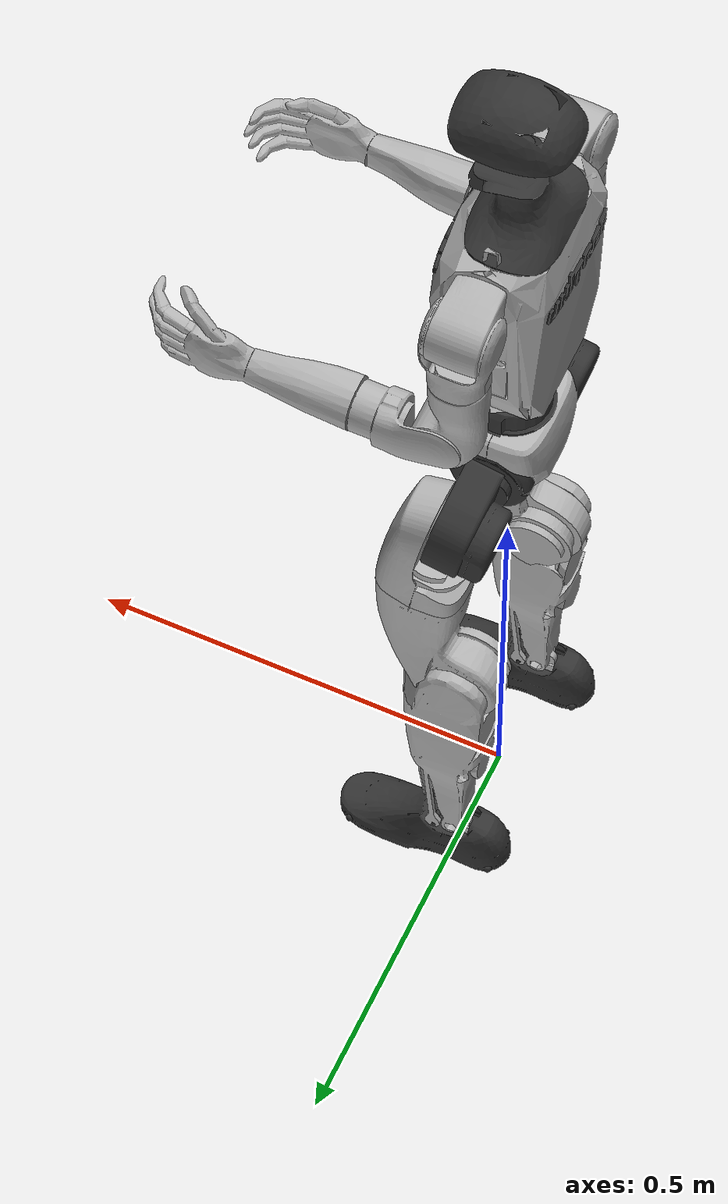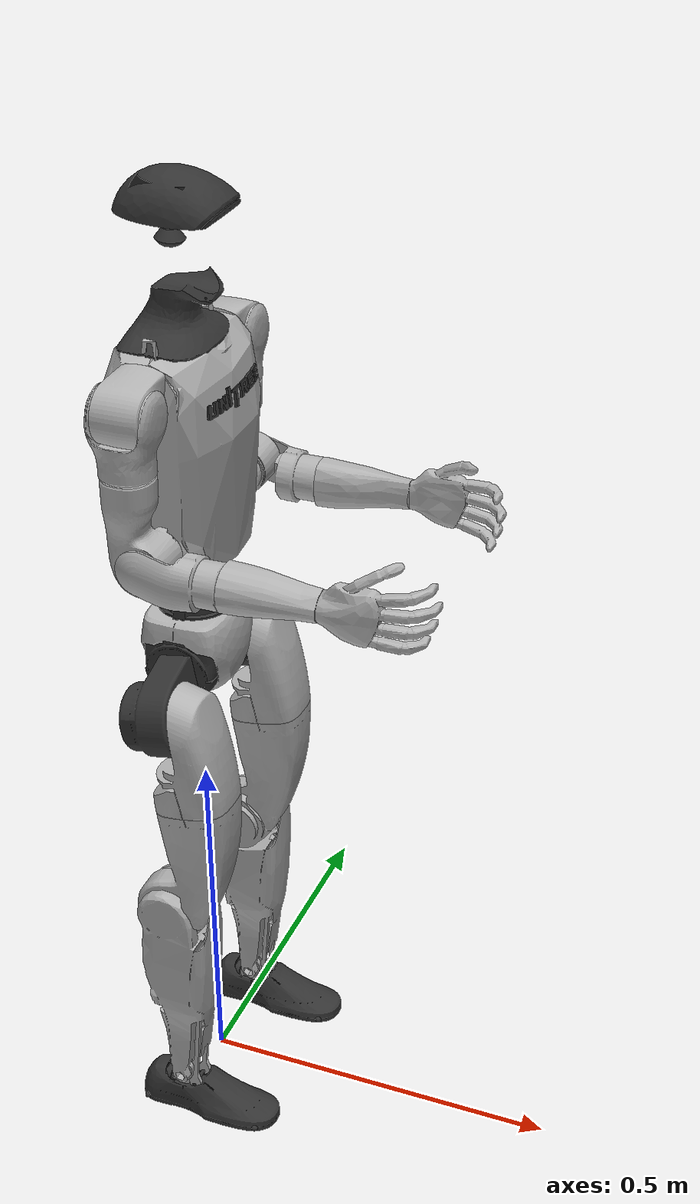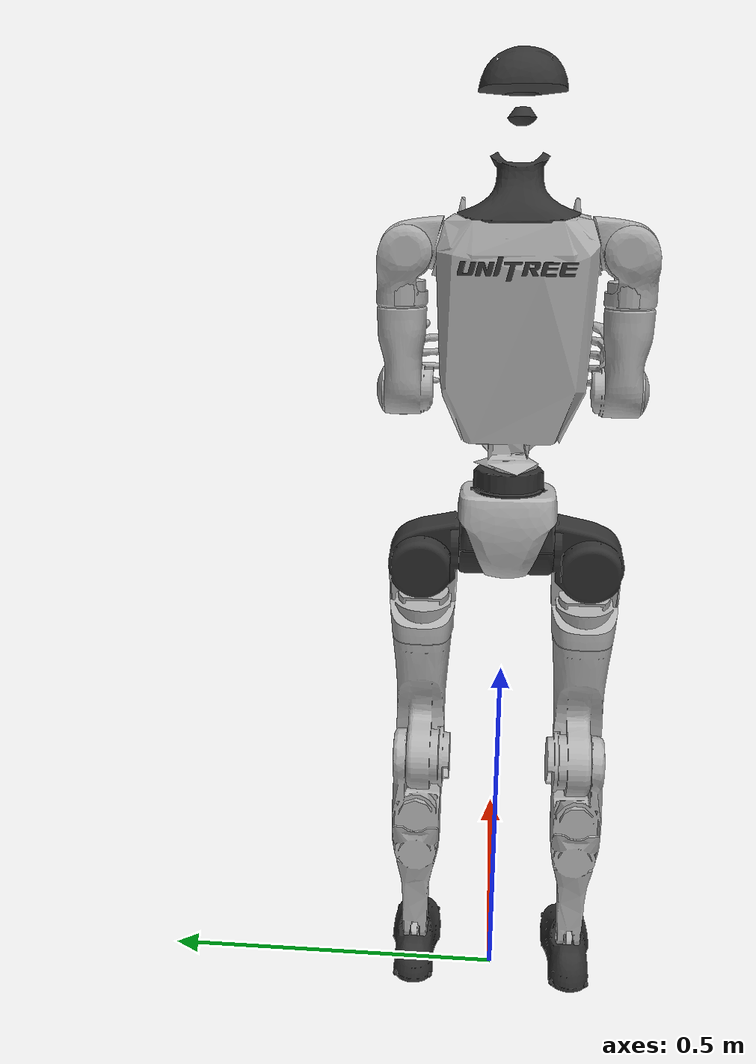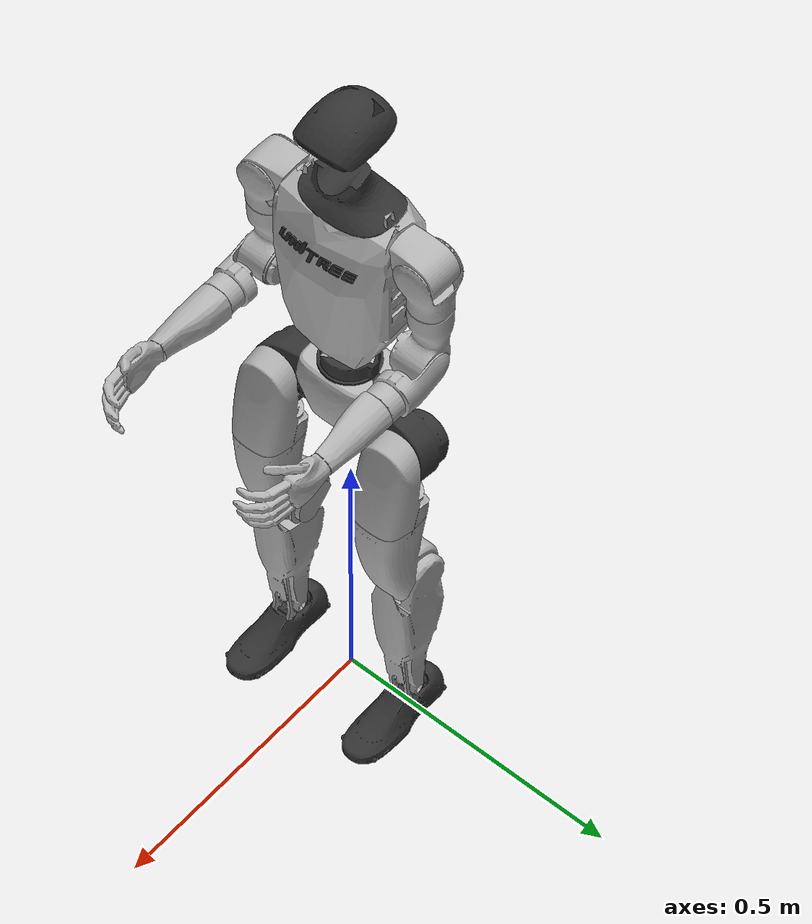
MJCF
<mujoco model="unitree_g1">
  <compiler angle="radian" meshdir="meshes/"/>

  <default>
    <joint damping="0.001" armature="0.01" frictionloss="0.1"/>
  </default>

  <asset>
    <mesh name="pelvis" file="pelvis.STL"/>
    <mesh name="pelvis_contour_link" file="pelvis_contour_link.STL"/>
    <mesh name="left_hip_pitch_link" file="left_hip_pitch_link.STL"/>
    <mesh name="left_hip_roll_link" file="left_hip_roll_link.STL"/>
    <mesh name="left_hip_yaw_link" file="left_hip_yaw_link.STL"/>
    <mesh name="left_knee_link" file="left_knee_link.STL"/>
    <mesh name="left_ankle_pitch_link" file="left_ankle_pitch_link.STL"/>
    <mesh name="left_ankle_roll_link" file="left_ankle_roll_link.STL"/>
    <mesh name="right_hip_pitch_link" file="right_hip_pitch_link.STL"/>
    <mesh name="right_hip_roll_link" file="right_hip_roll_link.STL"/>
    <mesh name="right_hip_yaw_link" file="right_hip_yaw_link.STL"/>
    <mesh name="right_knee_link" file="right_knee_link.STL"/>
    <mesh name="right_ankle_pitch_link" file="right_ankle_pitch_link.STL"/>
    <mesh name="right_ankle_roll_link" file="right_ankle_roll_link.STL"/>
    <mesh name="torso_link_23dof_rev_1_0" file="torso_link_23dof_rev_1_0.STL"/>
    <mesh name="logo_link" file="logo_link.STL"/>
    <mesh name="head_link" file="head_link_mid360_window.STL"/>
    <mesh name="left_shoulder_pitch_link" file="left_shoulder_pitch_link.STL"/>
    <mesh name="left_shoulder_roll_link" file="left_shoulder_roll_link.STL"/>
    <mesh name="left_shoulder_yaw_link" file="left_shoulder_yaw_link.STL"/>
    <mesh name="left_elbow_link" file="left_elbow_link.STL"/>
    <mesh name="left_wrist_roll_rubber_hand" file="left_wrist_roll_rubber_hand.STL"/>
    <mesh name="right_shoulder_pitch_link" file="right_shoulder_pitch_link.STL"/>
    <mesh name="right_shoulder_roll_link" file="right_shoulder_roll_link.STL"/>
    <mesh name="right_shoulder_yaw_link" file="right_shoulder_yaw_link.STL"/>
    <mesh name="right_elbow_link" file="right_elbow_link.STL"/>
    <mesh name="right_wrist_roll_rubber_hand" file="right_wrist_roll_rubber_hand.STL"/>
  </asset>

  <worldbody>
    <body name="base_link" pos="0 0 0.793">
      <inertial pos="0.0144905 0.000151462 0.144068" quat="0.999881 -0.000505543 -0.0154276 0.000328408" mass="17.7349" diaginertia="0.552723 0.454092 0.211762"/>
      <joint name="base_free" type="free" limited="false" actuatorfrclimited="false"/>
      <geom type="mesh" contype="0" conaffinity="0" group="1" density="0" rgba="0.2 0.2 0.2 1" mesh="pelvis"/>
      <geom type="mesh" contype="0" conaffinity="0" group="1" density="0" rgba="0.7 0.7 0.7 1" mesh="pelvis_contour_link"/>
      <geom type="mesh" rgba="0.7 0.7 0.7 1" mesh="pelvis_contour_link"/>
      <geom type="mesh" contype="0" conaffinity="0" group="1" density="0" rgba="0.7 0.7 0.7 1" mesh="torso_link_23dof_rev_1_0"/>
      <geom type="mesh" rgba="0.7 0.7 0.7 1" mesh="torso_link_23dof_rev_1_0"/>
      <geom type="mesh" contype="0" conaffinity="0" group="1" density="0" rgba="0.2 0.2 0.2 1" mesh="logo_link"/>
      <geom type="mesh" rgba="0.2 0.2 0.2 1" mesh="logo_link"/>
      <geom type="mesh" contype="0" conaffinity="0" group="1" density="0" rgba="0.2 0.2 0.2 1" mesh="head_link"/>
      <geom type="mesh" rgba="0.2 0.2 0.2 1" mesh="head_link"/>
      <geom pos="-7.2e-06 0.10022 0.29178" quat="0.990264 0.139201 1.38722e-05 -9.86868e-05" type="mesh" contype="0" conaffinity="0" group="1" density="0" rgba="0.7 0.7 0.7 1" mesh="left_shoulder_pitch_link"/>
      <geom size="0.03 0.025" pos="7.72569e-07 0.141427 0.293195" quat="0.700213 0.0985001 0.700232 0.0983605" type="cylinder" rgba="0.7 0.7 0.7 1"/>
      <geom pos="3.73942e-07 0.14056 0.288961" quat="1 3.00026e-05 2.74716e-05 -9.57958e-05" type="mesh" contype="0" conaffinity="0" group="1" density="0" rgba="0.7 0.7 0.7 1" mesh="left_shoulder_roll_link"/>
      <geom size="0.03 0.015" pos="-0.00400139 0.146564 0.235962" quat="1 3.00026e-05 2.74716e-05 -9.57958e-05" type="cylinder" rgba="0.7 0.7 0.7 1"/>
      <geom pos="-4.10007e-06 0.146807 0.185762" quat="1 3.00026e-05 2.74716e-05 -9.57958e-05" type="mesh" contype="0" conaffinity="0" group="1" density="0" rgba="0.7 0.7 0.7 1" mesh="left_shoulder_yaw_link"/>
      <geom pos="-4.10007e-06 0.146807 0.185762" quat="1 3.00026e-05 2.74716e-05 -9.57958e-05" type="mesh" rgba="0.7 0.7 0.7 1" mesh="left_shoulder_yaw_link"/>
      <geom pos="0.0157745 0.146808 0.105243" quat="1 3.00026e-05 2.74716e-05 -9.57958e-05" type="mesh" contype="0" conaffinity="0" group="1" density="0" rgba="0.7 0.7 0.7 1" mesh="left_elbow_link"/>
      <geom pos="0.0157745 0.146808 0.105243" quat="1 3.00026e-05 2.74716e-05 -9.57958e-05" type="mesh" rgba="0.7 0.7 0.7 1" mesh="left_elbow_link"/>
      <geom pos="0.115774 0.148678 0.0952374" quat="1 3.00026e-05 2.74716e-05 -9.57958e-05" type="mesh" contype="0" conaffinity="0" group="1" density="0" rgba="0.7 0.7 0.7 1" mesh="left_wrist_roll_rubber_hand"/>
      <geom pos="0.115774 0.148678 0.0952374" quat="1 3.00026e-05 2.74716e-05 -9.57958e-05" type="mesh" rgba="0.7 0.7 0.7 1" mesh="left_wrist_roll_rubber_hand"/>
      <geom pos="-7.2e-06 -0.10021 0.29178" quat="0.990264 -0.139201 1.38722e-05 9.86868e-05" type="mesh" contype="0" conaffinity="0" group="1" density="0" rgba="0.7 0.7 0.7 1" mesh="right_shoulder_pitch_link"/>
      <geom size="0.03 0.025" pos="7.72569e-07 -0.141417 0.293195" quat="0.700213 -0.0985001 0.700232 -0.0983605" type="cylinder" rgba="0.7 0.7 0.7 1"/>
      <geom pos="3.73942e-07 -0.14055 0.288961" quat="1 -3.00026e-05 2.74716e-05 9.57958e-05" type="mesh" contype="0" conaffinity="0" group="1" density="0" rgba="0.7 0.7 0.7 1" mesh="right_shoulder_roll_link"/>
      <geom size="0.03 0.015" pos="-0.00400139 -0.146554 0.235962" quat="1 -3.00026e-05 2.74716e-05 9.57958e-05" type="cylinder" rgba="0.7 0.7 0.7 1"/>
      <geom pos="-4.10007e-06 -0.146797 0.185762" quat="1 -3.00026e-05 2.74716e-05 9.57958e-05" type="mesh" contype="0" conaffinity="0" group="1" density="0" rgba="0.7 0.7 0.7 1" mesh="right_shoulder_yaw_link"/>
      <geom pos="-4.10007e-06 -0.146797 0.185762" quat="1 -3.00026e-05 2.74716e-05 9.57958e-05" type="mesh" rgba="0.7 0.7 0.7 1" mesh="right_shoulder_yaw_link"/>
      <geom pos="0.0157745 -0.146798 0.105243" quat="1 -3.00026e-05 2.74716e-05 9.57958e-05" type="mesh" contype="0" conaffinity="0" group="1" density="0" rgba="0.7 0.7 0.7 1" mesh="right_elbow_link"/>
      <geom pos="0.0157745 -0.146798 0.105243" quat="1 -3.00026e-05 2.74716e-05 9.57958e-05" type="mesh" rgba="0.7 0.7 0.7 1" mesh="right_elbow_link"/>
      <geom pos="0.115774 -0.148668 0.0952374" quat="1 -3.00026e-05 2.74716e-05 9.57958e-05" type="mesh" contype="0" conaffinity="0" group="1" density="0" rgba="0.7 0.7 0.7 1" mesh="right_wrist_roll_rubber_hand"/>
      <geom pos="0.115774 -0.148668 0.0952374" quat="1 -3.00026e-05 2.74716e-05 9.57958e-05" type="mesh" rgba="0.7 0.7 0.7 1" mesh="right_wrist_roll_rubber_hand"/>
      <body name="left_hip_pitch_link" pos="0 0.064452 -0.1027">
        <inertial pos="0.002741 0.047791 -0.02606" quat="0.954862 0.293964 0.0302556 0.030122" mass="1.35" diaginertia="0.00181517 0.00153422 0.00116212"/>
        <joint name="left_hip_pitch_joint" pos="0 0 0" axis="0 1 0" range="-2.5307 2.8798" actuatorfrcrange="-88 88"/>
        <geom type="mesh" contype="0" conaffinity="0" group="1" density="0" rgba="0.2 0.2 0.2 1" mesh="left_hip_pitch_link"/>
        <geom type="mesh" rgba="0.2 0.2 0.2 1" mesh="left_hip_pitch_link"/>
        <body name="left_hip_roll_link" pos="0 0.052 -0.030465" quat="0.996179 0 -0.0873386 0">
          <inertial pos="0.029812 -0.001045 -0.087934" quat="0.977808 -1.97119e-05 0.205576 -0.0403793" mass="1.52" diaginertia="0.00254986 0.00241169 0.00148755"/>
          <joint name="left_hip_roll_joint" pos="0 0 0" axis="1 0 0" range="-0.5236 2.9671" actuatorfrcrange="-139 139"/>
          <geom type="mesh" contype="0" conaffinity="0" group="1" density="0" rgba="0.7 0.7 0.7 1" mesh="left_hip_roll_link"/>
          <geom type="mesh" rgba="0.7 0.7 0.7 1" mesh="left_hip_roll_link"/>
          <body name="left_hip_yaw_link" pos="0.025001 0 -0.12412">
            <inertial pos="-0.057709 -0.010981 -0.15078" quat="0.600598 0.15832 0.223482 0.751181" mass="1.702" diaginertia="0.00776166 0.00717575 0.00160139"/>
            <joint name="left_hip_yaw_joint" pos="0 0 0" axis="0 0 1" range="-2.7576 2.7576" actuatorfrcrange="-88 88"/>
            <geom type="mesh" contype="0" conaffinity="0" group="1" density="0" rgba="0.7 0.7 0.7 1" mesh="left_hip_yaw_link"/>
            <geom type="mesh" rgba="0.7 0.7 0.7 1" mesh="left_hip_yaw_link"/>
            <body name="left_knee_link" pos="-0.078273 0.0021489 -0.17734" quat="0.996179 0 0.0873386 0">
              <inertial pos="0.005457 0.003964 -0.12074" quat="0.923418 -0.0327699 0.0158246 0.382067" mass="1.932" diaginertia="0.0113804 0.0112778 0.00146458"/>
              <joint name="left_knee_joint" pos="0 0 0" axis="0 1 0" range="-0.087267 2.8798" actuatorfrcrange="-139 139"/>
              <geom type="mesh" contype="0" conaffinity="0" group="1" density="0" rgba="0.7 0.7 0.7 1" mesh="left_knee_link"/>
              <geom type="mesh" rgba="0.7 0.7 0.7 1" mesh="left_knee_link"/>
              <body name="left_ankle_pitch_link" pos="0 -9.4445e-05 -0.30001">
                <inertial pos="-0.007269 0 0.011137" quat="0.603053 0.369225 0.369225 0.603053" mass="0.074" diaginertia="1.89e-05 1.40805e-05 6.9195e-06"/>
                <joint name="left_ankle_pitch_joint" pos="0 0 0" axis="0 1 0" range="-0.87267 0.5236" actuatorfrcrange="-50 50"/>
                <geom type="mesh" contype="0" conaffinity="0" group="1" density="0" rgba="0.7 0.7 0.7 1" mesh="left_ankle_pitch_link"/>
                <geom type="mesh" rgba="0.7 0.7 0.7 1" mesh="left_ankle_pitch_link"/>
                <body name="left_ankle_roll_link" pos="0 0 -0.017558">
                  <inertial pos="0.026505 0 -0.016425" quat="-0.000481092 0.728482 -0.000618967 0.685065" mass="0.608" diaginertia="0.00167218 0.0016161 0.000217621"/>
                  <joint name="left_ankle_roll_joint" pos="0 0 0" axis="1 0 0" range="-0.2618 0.2618" actuatorfrcrange="-50 50"/>
                  <geom type="mesh" contype="0" conaffinity="0" group="1" density="0" rgba="0.2 0.2 0.2 1" mesh="left_ankle_roll_link"/>
                  <geom size="0.005" pos="-0.05 0.025 -0.03" rgba="0.2 0.2 0.2 1"/>
                  <geom size="0.005" pos="-0.05 -0.025 -0.03" rgba="0.2 0.2 0.2 1"/>
                  <geom size="0.005" pos="0.12 0.03 -0.03" rgba="0.2 0.2 0.2 1"/>
                  <geom size="0.005" pos="0.12 -0.03 -0.03" rgba="0.2 0.2 0.2 1"/>
                </body>
              </body>
            </body>
          </body>
        </body>
      </body>
      <body name="right_hip_pitch_link" pos="0 -0.064452 -0.1027">
        <inertial pos="0.002741 -0.047791 -0.02606" quat="0.954862 -0.293964 0.0302556 -0.030122" mass="1.35" diaginertia="0.00181517 0.00153422 0.00116212"/>
        <joint name="right_hip_pitch_joint" pos="0 0 0" axis="0 1 0" range="-2.5307 2.8798" actuatorfrcrange="-88 88"/>
        <geom type="mesh" contype="0" conaffinity="0" group="1" density="0" rgba="0.2 0.2 0.2 1" mesh="right_hip_pitch_link"/>
        <geom type="mesh" rgba="0.2 0.2 0.2 1" mesh="right_hip_pitch_link"/>
        <body name="right_hip_roll_link" pos="0 -0.052 -0.030465" quat="0.996179 0 -0.0873386 0">
          <inertial pos="0.029812 0.001045 -0.087934" quat="0.977808 1.97119e-05 0.205576 0.0403793" mass="1.52" diaginertia="0.00254986 0.00241169 0.00148755"/>
          <joint name="right_hip_roll_joint" pos="0 0 0" axis="1 0 0" range="-2.9671 0.5236" actuatorfrcrange="-139 139"/>
          <geom type="mesh" contype="0" conaffinity="0" group="1" density="0" rgba="0.7 0.7 0.7 1" mesh="right_hip_roll_link"/>
          <geom type="mesh" rgba="0.7 0.7 0.7 1" mesh="right_hip_roll_link"/>
          <body name="right_hip_yaw_link" pos="0.025001 0 -0.12412">
            <inertial pos="-0.057709 0.010981 -0.15078" quat="0.751181 0.223482 0.15832 0.600598" mass="1.702" diaginertia="0.00776166 0.00717575 0.00160139"/>
            <joint name="right_hip_yaw_joint" pos="0 0 0" axis="0 0 1" range="-2.7576 2.7576" actuatorfrcrange="-88 88"/>
            <geom type="mesh" contype="0" conaffinity="0" group="1" density="0" rgba="0.7 0.7 0.7 1" mesh="right_hip_yaw_link"/>
            <geom type="mesh" rgba="0.7 0.7 0.7 1" mesh="right_hip_yaw_link"/>
            <body name="right_knee_link" pos="-0.078273 -0.0021489 -0.17734" quat="0.996179 0 0.0873386 0">
              <inertial pos="0.005457 -0.003964 -0.12074" quat="0.923439 0.0345276 0.0116333 -0.382012" mass="1.932" diaginertia="0.011374 0.0112843 0.00146452"/>
              <joint name="right_knee_joint" pos="0 0 0" axis="0 1 0" range="-0.087267 2.8798" actuatorfrcrange="-139 139"/>
              <geom type="mesh" contype="0" conaffinity="0" group="1" density="0" rgba="0.7 0.7 0.7 1" mesh="right_knee_link"/>
              <geom type="mesh" rgba="0.7 0.7 0.7 1" mesh="right_knee_link"/>
              <body name="right_ankle_pitch_link" pos="0 9.4445e-05 -0.30001">
                <inertial pos="-0.007269 0 0.011137" quat="0.603053 0.369225 0.369225 0.603053" mass="0.074" diaginertia="1.89e-05 1.40805e-05 6.9195e-06"/>
                <joint name="right_ankle_pitch_joint" pos="0 0 0" axis="0 1 0" range="-0.87267 0.5236" actuatorfrcrange="-50 50"/>
                <geom type="mesh" contype="0" conaffinity="0" group="1" density="0" rgba="0.7 0.7 0.7 1" mesh="right_ankle_pitch_link"/>
                <geom type="mesh" rgba="0.7 0.7 0.7 1" mesh="right_ankle_pitch_link"/>
                <body name="right_ankle_roll_link" pos="0 0 -0.017558">
                  <inertial pos="0.026505 0 -0.016425" quat="0.000481092 0.728482 0.000618967 0.685065" mass="0.608" diaginertia="0.00167218 0.0016161 0.000217621"/>
                  <joint name="right_ankle_roll_joint" pos="0 0 0" axis="1 0 0" range="-0.2618 0.2618" actuatorfrcrange="-50 50"/>
                  <geom type="mesh" contype="0" conaffinity="0" group="1" density="0" rgba="0.2 0.2 0.2 1" mesh="right_ankle_roll_link"/>
                  <geom size="0.005" pos="-0.05 0.025 -0.03" rgba="0.2 0.2 0.2 1"/>
                  <geom size="0.005" pos="-0.05 -0.025 -0.03" rgba="0.2 0.2 0.2 1"/>
                  <geom size="0.005" pos="0.12 0.03 -0.03" rgba="0.2 0.2 0.2 1"/>
                  <geom size="0.005" pos="0.12 -0.03 -0.03" rgba="0.2 0.2 0.2 1"/>
                </body>
              </body>
            </body>
          </body>
        </body>
      </body>
    </body>
  </worldbody>

  <actuator>
    <motor name="left_hip_pitch_joint" joint="left_hip_pitch_joint"/>
    <motor name="left_hip_roll_joint" joint="left_hip_roll_joint"/>
    <motor name="left_hip_yaw_joint" joint="left_hip_yaw_joint"/>
    <motor name="left_knee_joint" joint="left_knee_joint"/>
    <motor name="left_ankle_pitch_joint" joint="left_ankle_pitch_joint"/>
    <motor name="left_ankle_roll_joint" joint="left_ankle_roll_joint"/>
    <motor name="right_hip_pitch_joint" joint="right_hip_pitch_joint"/>
    <motor name="right_hip_roll_joint" joint="right_hip_roll_joint"/>
    <motor name="right_hip_yaw_joint" joint="right_hip_yaw_joint"/>
    <motor name="right_knee_joint" joint="right_knee_joint"/>
    <motor name="right_ankle_pitch_joint" joint="right_ankle_pitch_joint"/>
    <motor name="right_ankle_roll_joint" joint="right_ankle_roll_joint"/>
  </actuator>
</mujoco>
